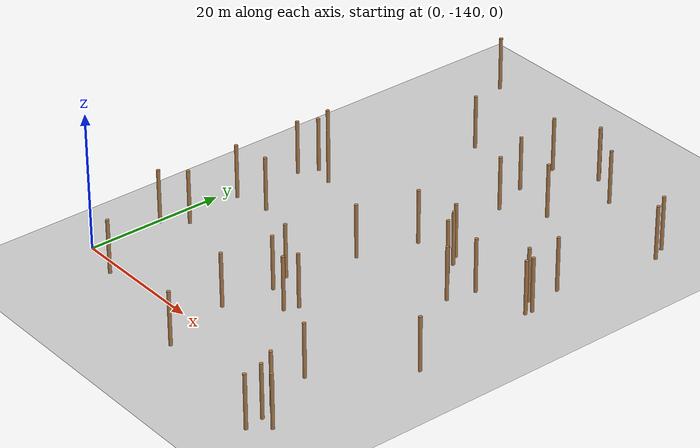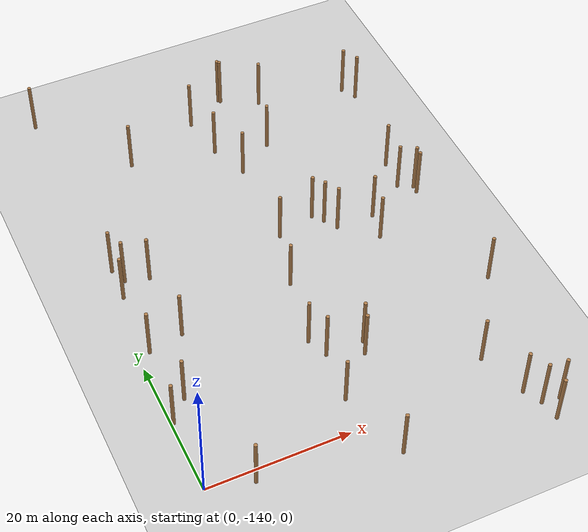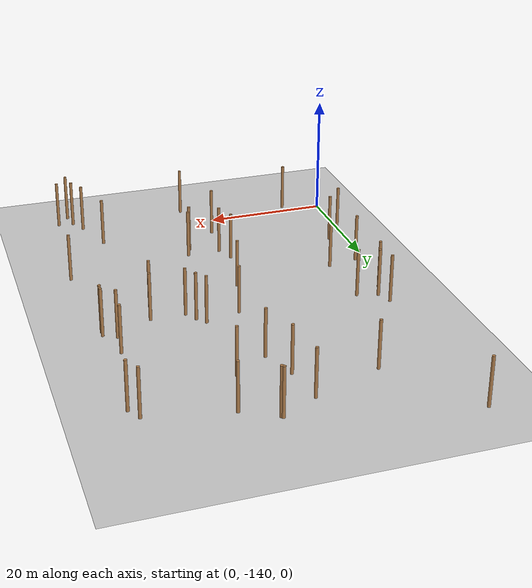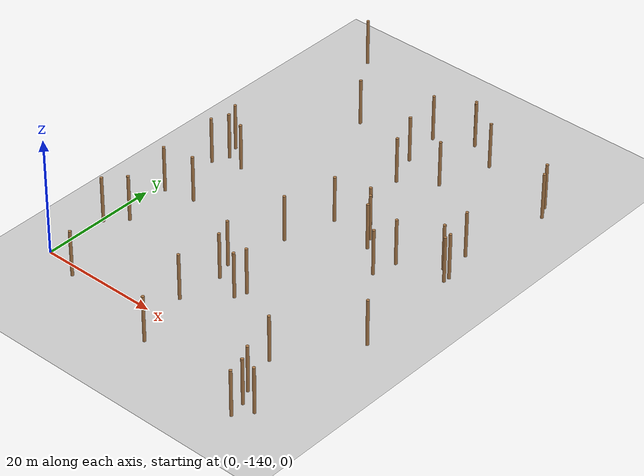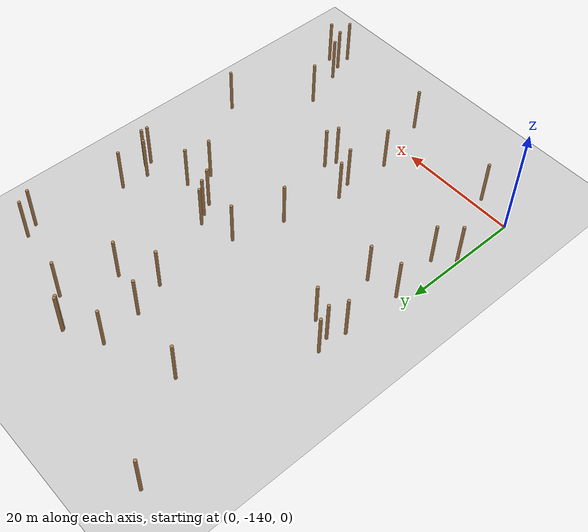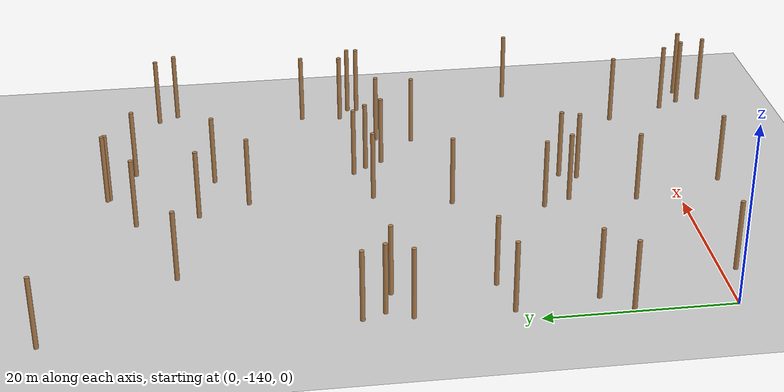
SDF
<sdf version="1.5">
 <world name="padure_tactica">
  <include><uri>model://sun</uri></include>
  <include><uri>model://ground_plane</uri></include>
  <model name="tree_32">
   <static>true</static>
   <pose>21.61 -135.15 4.0 0 0 0</pose>
   <link name="link">
    <collision name="collision">
     <geometry><cylinder><radius>0.25</radius><length>8.0</length></cylinder></geometry>
    </collision>
    <visual name="visual">
     <geometry><cylinder><radius>0.25</radius><length>8.0</length></cylinder></geometry>
     <material>
      <script><uri>file://media/materials/scripts/gazebo.material</uri><name>Gazebo/Wood</name></script>
     </material>
    </visual>
   </link>
  </model>
  <model name="tree_61">
   <static>true</static>
   <pose>34.10 -80.36 4.0 0 0 0</pose>
   <link name="link">
    <collision name="collision">
     <geometry><cylinder><radius>0.25</radius><length>8.0</length></cylinder></geometry>
    </collision>
    <visual name="visual">
     <geometry><cylinder><radius>0.25</radius><length>8.0</length></cylinder></geometry>
     <material>
      <script><uri>file://media/materials/scripts/gazebo.material</uri><name>Gazebo/Wood</name></script>
     </material>
    </visual>
   </link>
  </model>
  <model name="tree_99">
   <static>true</static>
   <pose>23.34 -114.82 4.0 0 0 0</pose>
   <link name="link">
    <collision name="collision">
     <geometry><cylinder><radius>0.25</radius><length>8.0</length></cylinder></geometry>
    </collision>
    <visual name="visual">
     <geometry><cylinder><radius>0.25</radius><length>8.0</length></cylinder></geometry>
     <material>
      <script><uri>file://media/materials/scripts/gazebo.material</uri><name>Gazebo/Wood</name></script>
     </material>
    </visual>
   </link>
  </model>
  <model name="tree_107">
   <static>true</static>
   <pose>23.97 -87.21 4.0 0 0 0</pose>
   <link name="link">
    <collision name="collision">
     <geometry><cylinder><radius>0.25</radius><length>8.0</length></cylinder></geometry>
    </collision>
    <visual name="visual">
     <geometry><cylinder><radius>0.25</radius><length>8.0</length></cylinder></geometry>
     <material>
      <script><uri>file://media/materials/scripts/gazebo.material</uri><name>Gazebo/Wood</name></script>
     </material>
    </visual>
   </link>
  </model>
  <model name="tree_119">
   <static>true</static>
   <pose>28.97 -77.57 4.0 0 0 0</pose>
   <link name="link">
    <collision name="collision">
     <geometry><cylinder><radius>0.25</radius><length>8.0</length></cylinder></geometry>
    </collision>
    <visual name="visual">
     <geometry><cylinder><radius>0.25</radius><length>8.0</length></cylinder></geometry>
     <material>
      <script><uri>file://media/materials/scripts/gazebo.material</uri><name>Gazebo/Wood</name></script>
     </material>
    </visual>
   </link>
  </model>
  <model name="tree_139">
   <static>true</static>
   <pose>45.12 -104.53 4.0 0 0 0</pose>
   <link name="link">
    <collision name="collision">
     <geometry><cylinder><radius>0.25</radius><length>8.0</length></cylinder></geometry>
    </collision>
    <visual name="visual">
     <geometry><cylinder><radius>0.25</radius><length>8.0</length></cylinder></geometry>
     <material>
      <script><uri>file://media/materials/scripts/gazebo.material</uri><name>Gazebo/Wood</name></script>
     </material>
    </visual>
   </link>
  </model>
  <model name="tree_156">
   <static>true</static>
   <pose>28.74 -77.30 4.0 0 0 0</pose>
   <link name="link">
    <collision name="collision">
     <geometry><cylinder><radius>0.25</radius><length>8.0</length></cylinder></geometry>
    </collision>
    <visual name="visual">
     <geometry><cylinder><radius>0.25</radius><length>8.0</length></cylinder></geometry>
     <material>
      <script><uri>file://media/materials/scripts/gazebo.material</uri><name>Gazebo/Wood</name></script>
     </material>
    </visual>
   </link>
  </model>
  <model name="tree_191">
   <static>true</static>
   <pose>11.85 -84.72 4.0 0 0 0</pose>
   <link name="link">
    <collision name="collision">
     <geometry><cylinder><radius>0.25</radius><length>8.0</length></cylinder></geometry>
    </collision>
    <visual name="visual">
     <geometry><cylinder><radius>0.25</radius><length>8.0</length></cylinder></geometry>
     <material>
      <script><uri>file://media/materials/scripts/gazebo.material</uri><name>Gazebo/Wood</name></script>
     </material>
    </visual>
   </link>
  </model>
  <model name="tree_206">
   <static>true</static>
   <pose>1.70 -117.73 4.0 0 0 0</pose>
   <link name="link">
    <collision name="collision">
     <geometry><cylinder><radius>0.25</radius><length>8.0</length></cylinder></geometry>
    </collision>
    <visual name="visual">
     <geometry><cylinder><radius>0.25</radius><length>8.0</length></cylinder></geometry>
     <material>
      <script><uri>file://media/materials/scripts/gazebo.material</uri><name>Gazebo/Wood</name></script>
     </material>
    </visual>
   </link>
  </model>
  <model name="tree_211">
   <static>true</static>
   <pose>26.07 -92.70 4.0 0 0 0</pose>
   <link name="link">
    <collision name="collision">
     <geometry><cylinder><radius>0.25</radius><length>8.0</length></cylinder></geometry>
    </collision>
    <visual name="visual">
     <geometry><cylinder><radius>0.25</radius><length>8.0</length></cylinder></geometry>
     <material>
      <script><uri>file://media/materials/scripts/gazebo.material</uri><name>Gazebo/Wood</name></script>
     </material>
    </visual>
   </link>
  </model>
  <model name="tree_217">
   <static>true</static>
   <pose>2.97 -126.51 4.0 0 0 0</pose>
   <link name="link">
    <collision name="collision">
     <geometry><cylinder><radius>0.25</radius><length>8.0</length></cylinder></geometry>
    </collision>
    <visual name="visual">
     <geometry><cylinder><radius>0.25</radius><length>8.0</length></cylinder></geometry>
     <material>
      <script><uri>file://media/materials/scripts/gazebo.material</uri><name>Gazebo/Wood</name></script>
     </material>
    </visual>
   </link>
  </model>
  <model name="tree_220">
   <static>true</static>
   <pose>46.54 -146.29 4.0 0 0 0</pose>
   <link name="link">
    <collision name="collision">
     <geometry><cylinder><radius>0.25</radius><length>8.0</length></cylinder></geometry>
    </collision>
    <visual name="visual">
     <geometry><cylinder><radius>0.25</radius><length>8.0</length></cylinder></geometry>
     <material>
      <script><uri>file://media/materials/scripts/gazebo.material</uri><name>Gazebo/Wood</name></script>
     </material>
    </visual>
   </link>
  </model>
  <model name="tree_251">
   <static>true</static>
   <pose>47.16 -105.66 4.0 0 0 0</pose>
   <link name="link">
    <collision name="collision">
     <geometry><cylinder><radius>0.25</radius><length>8.0</length></cylinder></geometry>
    </collision>
    <visual name="visual">
     <geometry><cylinder><radius>0.25</radius><length>8.0</length></cylinder></geometry>
     <material>
      <script><uri>file://media/materials/scripts/gazebo.material</uri><name>Gazebo/Wood</name></script>
     </material>
    </visual>
   </link>
  </model>
  <model name="tree_255">
   <static>true</static>
   <pose>48.05 -85.13 4.0 0 0 0</pose>
   <link name="link">
    <collision name="collision">
     <geometry><cylinder><radius>0.25</radius><length>8.0</length></cylinder></geometry>
    </collision>
    <visual name="visual">
     <geometry><cylinder><radius>0.25</radius><length>8.0</length></cylinder></geometry>
     <material>
      <script><uri>file://media/materials/scripts/gazebo.material</uri><name>Gazebo/Wood</name></script>
     </material>
    </visual>
   </link>
  </model>
  <model name="tree_257">
   <static>true</static>
   <pose>44.09 -145.98 4.0 0 0 0</pose>
   <link name="link">
    <collision name="collision">
     <geometry><cylinder><radius>0.25</radius><length>8.0</length></cylinder></geometry>
    </collision>
    <visual name="visual">
     <geometry><cylinder><radius>0.25</radius><length>8.0</length></cylinder></geometry>
     <material>
      <script><uri>file://media/materials/scripts/gazebo.material</uri><name>Gazebo/Wood</name></script>
     </material>
    </visual>
   </link>
  </model>
  <model name="tree_316">
   <static>true</static>
   <pose>38.36 -112.26 4.0 0 0 0</pose>
   <link name="link">
    <collision name="collision">
     <geometry><cylinder><radius>0.25</radius><length>8.0</length></cylinder></geometry>
    </collision>
    <visual name="visual">
     <geometry><cylinder><radius>0.25</radius><length>8.0</length></cylinder></geometry>
     <material>
      <script><uri>file://media/materials/scripts/gazebo.material</uri><name>Gazebo/Wood</name></script>
     </material>
    </visual>
   </link>
  </model>
  <model name="tree_326">
   <static>true</static>
   <pose>48.33 -124.99 4.0 0 0 0</pose>
   <link name="link">
    <collision name="collision">
     <geometry><cylinder><radius>0.25</radius><length>8.0</length></cylinder></geometry>
    </collision>
    <visual name="visual">
     <geometry><cylinder><radius>0.25</radius><length>8.0</length></cylinder></geometry>
     <material>
      <script><uri>file://media/materials/scripts/gazebo.material</uri><name>Gazebo/Wood</name></script>
     </material>
    </visual>
   </link>
  </model>
  <model name="tree_342">
   <static>true</static>
   <pose>46.86 -82.99 4.0 0 0 0</pose>
   <link name="link">
    <collision name="collision">
     <geometry><cylinder><radius>0.25</radius><length>8.0</length></cylinder></geometry>
    </collision>
    <visual name="visual">
     <geometry><cylinder><radius>0.25</radius><length>8.0</length></cylinder></geometry>
     <material>
      <script><uri>file://media/materials/scripts/gazebo.material</uri><name>Gazebo/Wood</name></script>
     </material>
    </visual>
   </link>
  </model>
  <model name="tree_356">
   <static>true</static>
   <pose>6.66 -116.72 4.0 0 0 0</pose>
   <link name="link">
    <collision name="collision">
     <geometry><cylinder><radius>0.25</radius><length>8.0</length></cylinder></geometry>
    </collision>
    <visual name="visual">
     <geometry><cylinder><radius>0.25</radius><length>8.0</length></cylinder></geometry>
     <material>
      <script><uri>file://media/materials/scripts/gazebo.material</uri><name>Gazebo/Wood</name></script>
     </material>
    </visual>
   </link>
  </model>
  <model name="tree_511">
   <static>true</static>
   <pose>1.64 -71.28 4.0 0 0 0</pose>
   <link name="link">
    <collision name="collision">
     <geometry><cylinder><radius>0.25</radius><length>8.0</length></cylinder></geometry>
    </collision>
    <visual name="visual">
     <geometry><cylinder><radius>0.25</radius><length>8.0</length></cylinder></geometry>
     <material>
      <script><uri>file://media/materials/scripts/gazebo.material</uri><name>Gazebo/Wood</name></script>
     </material>
    </visual>
   </link>
  </model>
  <model name="tree_535">
   <static>true</static>
   <pose>2.10 -102.62 4.0 0 0 0</pose>
   <link name="link">
    <collision name="collision">
     <geometry><cylinder><radius>0.25</radius><length>8.0</length></cylinder></geometry>
    </collision>
    <visual name="visual">
     <geometry><cylinder><radius>0.25</radius><length>8.0</length></cylinder></geometry>
     <material>
      <script><uri>file://media/materials/scripts/gazebo.material</uri><name>Gazebo/Wood</name></script>
     </material>
    </visual>
   </link>
  </model>
  <model name="tree_536">
   <static>true</static>
   <pose>44.58 -148.81 4.0 0 0 0</pose>
   <link name="link">
    <collision name="collision">
     <geometry><cylinder><radius>0.25</radius><length>8.0</length></cylinder></geometry>
    </collision>
    <visual name="visual">
     <geometry><cylinder><radius>0.25</radius><length>8.0</length></cylinder></geometry>
     <material>
      <script><uri>file://media/materials/scripts/gazebo.material</uri><name>Gazebo/Wood</name></script>
     </material>
    </visual>
   </link>
  </model>
  <model name="tree_550">
   <static>true</static>
   <pose>1.87 -107.65 4.0 0 0 0</pose>
   <link name="link">
    <collision name="collision">
     <geometry><cylinder><radius>0.25</radius><length>8.0</length></cylinder></geometry>
    </collision>
    <visual name="visual">
     <geometry><cylinder><radius>0.25</radius><length>8.0</length></cylinder></geometry>
     <material>
      <script><uri>file://media/materials/scripts/gazebo.material</uri><name>Gazebo/Wood</name></script>
     </material>
    </visual>
   </link>
  </model>
  <model name="tree_576">
   <static>true</static>
   <pose>25.68 -106.37 4.0 0 0 0</pose>
   <link name="link">
    <collision name="collision">
     <geometry><cylinder><radius>0.25</radius><length>8.0</length></cylinder></geometry>
    </collision>
    <visual name="visual">
     <geometry><cylinder><radius>0.25</radius><length>8.0</length></cylinder></geometry>
     <material>
      <script><uri>file://media/materials/scripts/gazebo.material</uri><name>Gazebo/Wood</name></script>
     </material>
    </visual>
   </link>
  </model>
  <model name="tree_586">
   <static>true</static>
   <pose>22.98 -80.47 4.0 0 0 0</pose>
   <link name="link">
    <collision name="collision">
     <geometry><cylinder><radius>0.25</radius><length>8.0</length></cylinder></geometry>
    </collision>
    <visual name="visual">
     <geometry><cylinder><radius>0.25</radius><length>8.0</length></cylinder></geometry>
     <material>
      <script><uri>file://media/materials/scripts/gazebo.material</uri><name>Gazebo/Wood</name></script>
     </material>
    </visual>
   </link>
  </model>
  <model name="tree_592">
   <static>true</static>
   <pose>32.55 -106.26 4.0 0 0 0</pose>
   <link name="link">
    <collision name="collision">
     <geometry><cylinder><radius>0.25</radius><length>8.0</length></cylinder></geometry>
    </collision>
    <visual name="visual">
     <geometry><cylinder><radius>0.25</radius><length>8.0</length></cylinder></geometry>
     <material>
      <script><uri>file://media/materials/scripts/gazebo.material</uri><name>Gazebo/Wood</name></script>
     </material>
    </visual>
   </link>
  </model>
  <model name="tree_641">
   <static>true</static>
   <pose>31.33 -104.81 4.0 0 0 0</pose>
   <link name="link">
    <collision name="collision">
     <geometry><cylinder><radius>0.25</radius><length>8.0</length></cylinder></geometry>
    </collision>
    <visual name="visual">
     <geometry><cylinder><radius>0.25</radius><length>8.0</length></cylinder></geometry>
     <material>
      <script><uri>file://media/materials/scripts/gazebo.material</uri><name>Gazebo/Wood</name></script>
     </material>
    </visual>
   </link>
  </model>
  <model name="tree_684">
   <static>true</static>
   <pose>33.71 -108.17 4.0 0 0 0</pose>
   <link name="link">
    <collision name="collision">
     <geometry><cylinder><radius>0.25</radius><length>8.0</length></cylinder></geometry>
    </collision>
    <visual name="visual">
     <geometry><cylinder><radius>0.25</radius><length>8.0</length></cylinder></geometry>
     <material>
      <script><uri>file://media/materials/scripts/gazebo.material</uri><name>Gazebo/Wood</name></script>
     </material>
    </visual>
   </link>
  </model>
  <model name="tree_756">
   <static>true</static>
   <pose>0.34 -129.42 4.0 0 0 0</pose>
   <link name="link">
    <collision name="collision">
     <geometry><cylinder><radius>0.25</radius><length>8.0</length></cylinder></geometry>
    </collision>
    <visual name="visual">
     <geometry><cylinder><radius>0.25</radius><length>8.0</length></cylinder></geometry>
     <material>
      <script><uri>file://media/materials/scripts/gazebo.material</uri><name>Gazebo/Wood</name></script>
     </material>
    </visual>
   </link>
  </model>
  <model name="tree_836">
   <static>true</static>
   <pose>6.25 -141.61 4.0 0 0 0</pose>
   <link name="link">
    <collision name="collision">
     <geometry><cylinder><radius>0.25</radius><length>8.0</length></cylinder></geometry>
    </collision>
    <visual name="visual">
     <geometry><cylinder><radius>0.25</radius><length>8.0</length></cylinder></geometry>
     <material>
      <script><uri>file://media/materials/scripts/gazebo.material</uri><name>Gazebo/Wood</name></script>
     </material>
    </visual>
   </link>
  </model>
  <model name="tree_864">
   <static>true</static>
   <pose>24.56 -145.32 4.0 0 0 0</pose>
   <link name="link">
    <collision name="collision">
     <geometry><cylinder><radius>0.25</radius><length>8.0</length></cylinder></geometry>
    </collision>
    <visual name="visual">
     <geometry><cylinder><radius>0.25</radius><length>8.0</length></cylinder></geometry>
     <material>
      <script><uri>file://media/materials/scripts/gazebo.material</uri><name>Gazebo/Wood</name></script>
     </material>
    </visual>
   </link>
  </model>
  <model name="tree_885">
   <static>true</static>
   <pose>40.53 -136.76 4.0 0 0 0</pose>
   <link name="link">
    <collision name="collision">
     <geometry><cylinder><radius>0.25</radius><length>8.0</length></cylinder></geometry>
    </collision>
    <visual name="visual">
     <geometry><cylinder><radius>0.25</radius><length>8.0</length></cylinder></geometry>
     <material>
      <script><uri>file://media/materials/scripts/gazebo.material</uri><name>Gazebo/Wood</name></script>
     </material>
    </visual>
   </link>
  </model>
  <model name="tree_905">
   <static>true</static>
   <pose>22.49 -127.72 4.0 0 0 0</pose>
   <link name="link">
    <collision name="collision">
     <geometry><cylinder><radius>0.25</radius><length>8.0</length></cylinder></geometry>
    </collision>
    <visual name="visual">
     <geometry><cylinder><radius>0.25</radius><length>8.0</length></cylinder></geometry>
     <material>
      <script><uri>file://media/materials/scripts/gazebo.material</uri><name>Gazebo/Wood</name></script>
     </material>
    </visual>
   </link>
  </model>
  <model name="tree_913">
   <static>true</static>
   <pose>21.32 -124.75 4.0 0 0 0</pose>
   <link name="link">
    <collision name="collision">
     <geometry><cylinder><radius>0.25</radius><length>8.0</length></cylinder></geometry>
    </collision>
    <visual name="visual">
     <geometry><cylinder><radius>0.25</radius><length>8.0</length></cylinder></geometry>
     <material>
      <script><uri>file://media/materials/scripts/gazebo.material</uri><name>Gazebo/Wood</name></script>
     </material>
    </visual>
   </link>
  </model>
  <model name="tree_914">
   <static>true</static>
   <pose>6.33 -105.93 4.0 0 0 0</pose>
   <link name="link">
    <collision name="collision">
     <geometry><cylinder><radius>0.25</radius><length>8.0</length></cylinder></geometry>
    </collision>
    <visual name="visual">
     <geometry><cylinder><radius>0.25</radius><length>8.0</length></cylinder></geometry>
     <material>
      <script><uri>file://media/materials/scripts/gazebo.material</uri><name>Gazebo/Wood</name></script>
     </material>
    </visual>
   </link>
  </model>
  <model name="tree_918">
   <static>true</static>
   <pose>45.58 -100.03 4.0 0 0 0</pose>
   <link name="link">
    <collision name="collision">
     <geometry><cylinder><radius>0.25</radius><length>8.0</length></cylinder></geometry>
    </collision>
    <visual name="visual">
     <geometry><cylinder><radius>0.25</radius><length>8.0</length></cylinder></geometry>
     <material>
      <script><uri>file://media/materials/scripts/gazebo.material</uri><name>Gazebo/Wood</name></script>
     </material>
    </visual>
   </link>
  </model>
  <model name="tree_968">
   <static>true</static>
   <pose>3.06 -105.00 4.0 0 0 0</pose>
   <link name="link">
    <collision name="collision">
     <geometry><cylinder><radius>0.25</radius><length>8.0</length></cylinder></geometry>
    </collision>
    <visual name="visual">
     <geometry><cylinder><radius>0.25</radius><length>8.0</length></cylinder></geometry>
     <material>
      <script><uri>file://media/materials/scripts/gazebo.material</uri><name>Gazebo/Wood</name></script>
     </material>
    </visual>
   </link>
  </model>
  <model name="tree_1036">
   <static>true</static>
   <pose>31.50 -89.11 4.0 0 0 0</pose>
   <link name="link">
    <collision name="collision">
     <geometry><cylinder><radius>0.25</radius><length>8.0</length></cylinder></geometry>
    </collision>
    <visual name="visual">
     <geometry><cylinder><radius>0.25</radius><length>8.0</length></cylinder></geometry>
     <material>
      <script><uri>file://media/materials/scripts/gazebo.material</uri><name>Gazebo/Wood</name></script>
     </material>
    </visual>
   </link>
  </model>
  <model name="tree_1093">
   <static>true</static>
   <pose>42.77 -143.53 4.0 0 0 0</pose>
   <link name="link">
    <collision name="collision">
     <geometry><cylinder><radius>0.25</radius><length>8.0</length></cylinder></geometry>
    </collision>
    <visual name="visual">
     <geometry><cylinder><radius>0.25</radius><length>8.0</length></cylinder></geometry>
     <material>
      <script><uri>file://media/materials/scripts/gazebo.material</uri><name>Gazebo/Wood</name></script>
     </material>
    </visual>
   </link>
  </model>
  <model name="tree_1125">
   <static>true</static>
   <pose>27.16 -129.64 4.0 0 0 0</pose>
   <link name="link">
    <collision name="collision">
     <geometry><cylinder><radius>0.25</radius><length>8.0</length></cylinder></geometry>
    </collision>
    <visual name="visual">
     <geometry><cylinder><radius>0.25</radius><length>8.0</length></cylinder></geometry>
     <material>
      <script><uri>file://media/materials/scripts/gazebo.material</uri><name>Gazebo/Wood</name></script>
     </material>
    </visual>
   </link>
  </model>
  <model name="tree_1138">
   <static>true</static>
   <pose>39.23 -108.22 4.0 0 0 0</pose>
   <link name="link">
    <collision name="collision">
     <geometry><cylinder><radius>0.25</radius><length>8.0</length></cylinder></geometry>
    </collision>
    <visual name="visual">
     <geometry><cylinder><radius>0.25</radius><length>8.0</length></cylinder></geometry>
     <material>
      <script><uri>file://media/materials/scripts/gazebo.material</uri><name>Gazebo/Wood</name></script>
     </material>
    </visual>
   </link>
  </model>
  <model name="tree_1168">
   <static>true</static>
   <pose>27.85 -127.74 4.0 0 0 0</pose>
   <link name="link">
    <collision name="collision">
     <geometry><cylinder><radius>0.25</radius><length>8.0</length></cylinder></geometry>
    </collision>
    <visual name="visual">
     <geometry><cylinder><radius>0.25</radius><length>8.0</length></cylinder></geometry>
     <material>
      <script><uri>file://media/materials/scripts/gazebo.material</uri><name>Gazebo/Wood</name></script>
     </material>
    </visual>
   </link>
  </model>
  <model name="tree_1170">
   <static>true</static>
   <pose>47.09 -106.72 4.0 0 0 0</pose>
   <link name="link">
    <collision name="collision">
     <geometry><cylinder><radius>0.25</radius><length>8.0</length></cylinder></geometry>
    </collision>
    <visual name="visual">
     <geometry><cylinder><radius>0.25</radius><length>8.0</length></cylinder></geometry>
     <material>
      <script><uri>file://media/materials/scripts/gazebo.material</uri><name>Gazebo/Wood</name></script>
     </material>
    </visual>
   </link>
  </model>
 </world>
</sdf>
